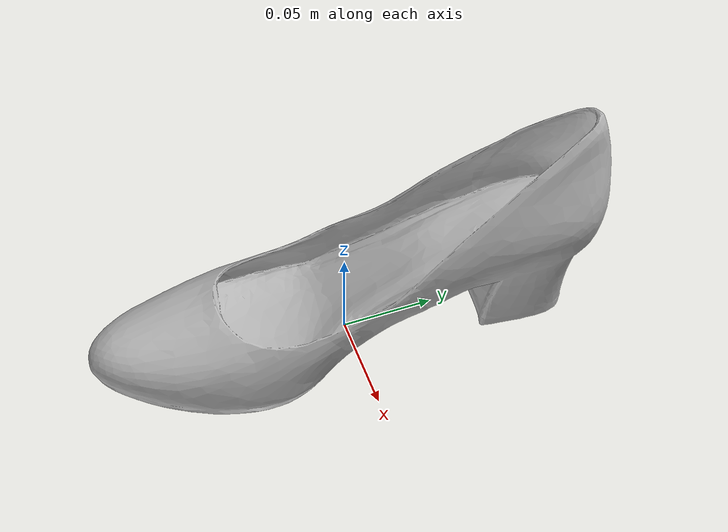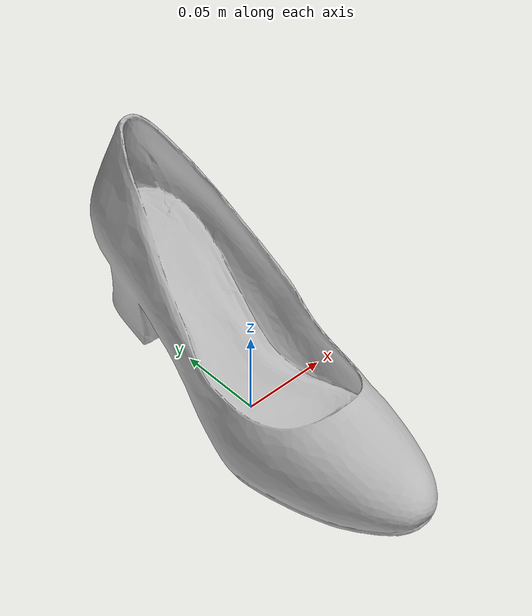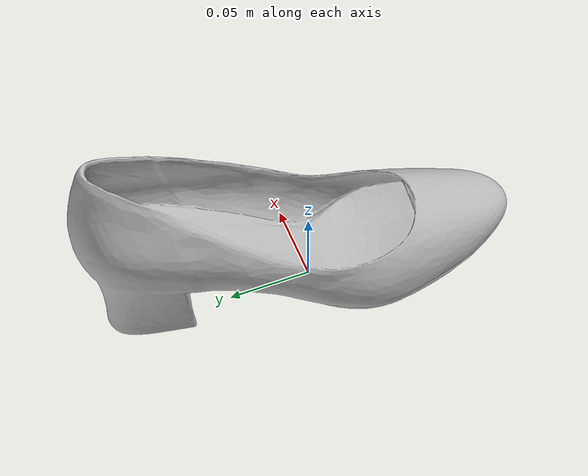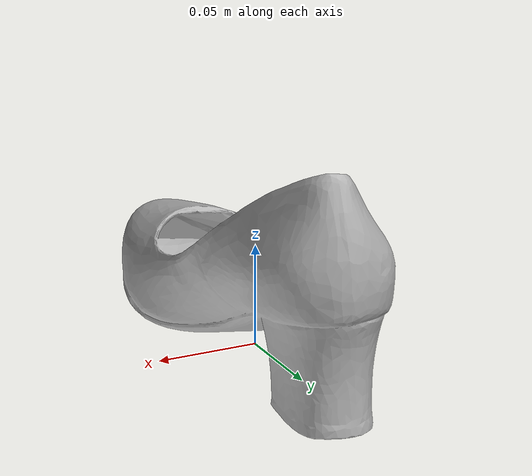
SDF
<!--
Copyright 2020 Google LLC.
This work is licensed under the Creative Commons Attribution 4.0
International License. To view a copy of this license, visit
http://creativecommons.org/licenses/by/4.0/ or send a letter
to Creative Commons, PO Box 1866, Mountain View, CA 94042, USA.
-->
<?xml version="1.0" ?>
<sdf version="1.6">
  <model name="Chelsea_lo_fl_rdheel_zAQrnhlEfw8">
    <link name="link_0">
      <visual name="visual">
        <geometry>
          <mesh>
            <uri>meshes/model.obj</uri>
          </mesh>
        </geometry>
      </visual>
      <collision name="collision_0">
        <geometry>
          <mesh>
            <uri>meshes/model.obj</uri>
          </mesh>
        </geometry>
      </collision>
    </link>
  </model>
</sdf>
